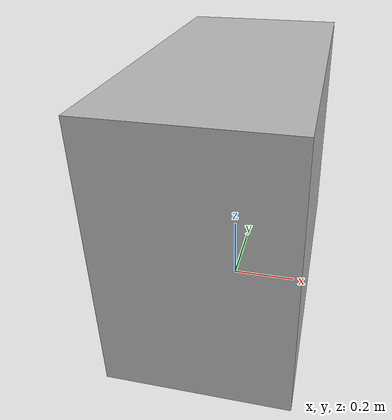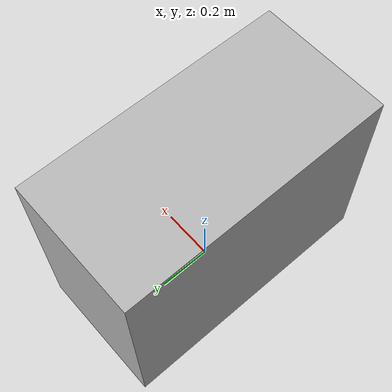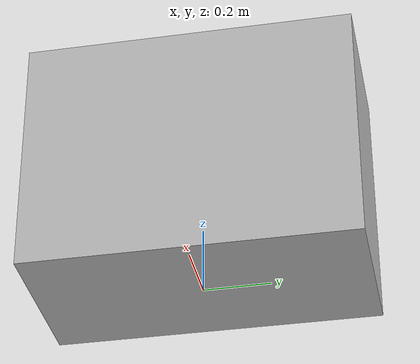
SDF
<?xml version="1.0"?>
<sdf version="1.6">
  <model name="rwc2019/shoe_rack">
    <link name="1_link">
      <collision name="1_col">
        <geometry>
          <box>
            <size>0.496 0.991 0.752</size>
          </box>
        </geometry>
      </collision>
      <visual name="1_vis">
        <geometry>
          <box>
            <size>0.496 0.991 0.752</size>
          </box>
        </geometry>
      </visual>
      <pose>0.0 0.0 0.376 0 0 0</pose>
    </link>
    <link name="on_top_of">
      <virtual_volume name="on_top_of_vv">
        <geometry>
          <box>
            <size>0.456 0.931 0.25</size>
          </box>
        </geometry>
        <pose>0.02 0.0 0.897 0 0 0</pose>
      </virtual_volume>
    </link>
    <link name="in_front_of">
      <virtual_volume name="in_front_of_vv">
        <geometry>
          <box>
            <size>0.2 0.5 0.01</size>
          </box>
        </geometry>
        <pose>0.748 0.0 0.005 0 0 0</pose>
      </virtual_volume>
    </link>
    <static>true</static>
  </model>
</sdf>
